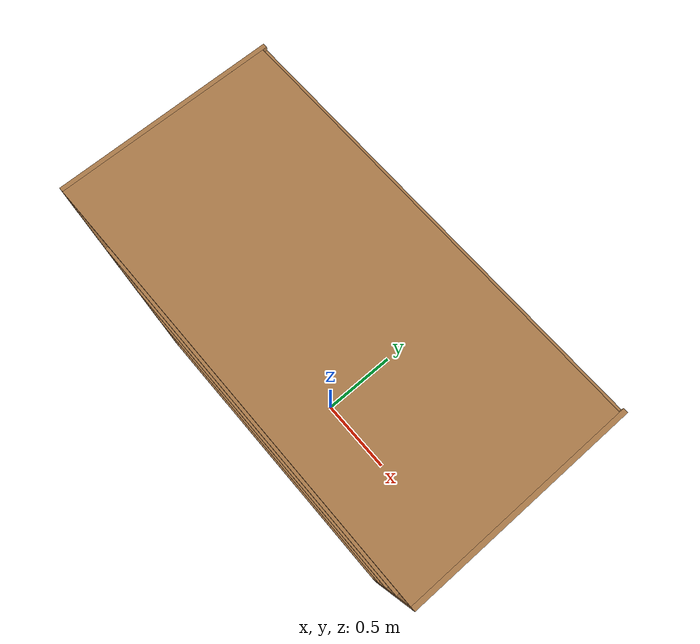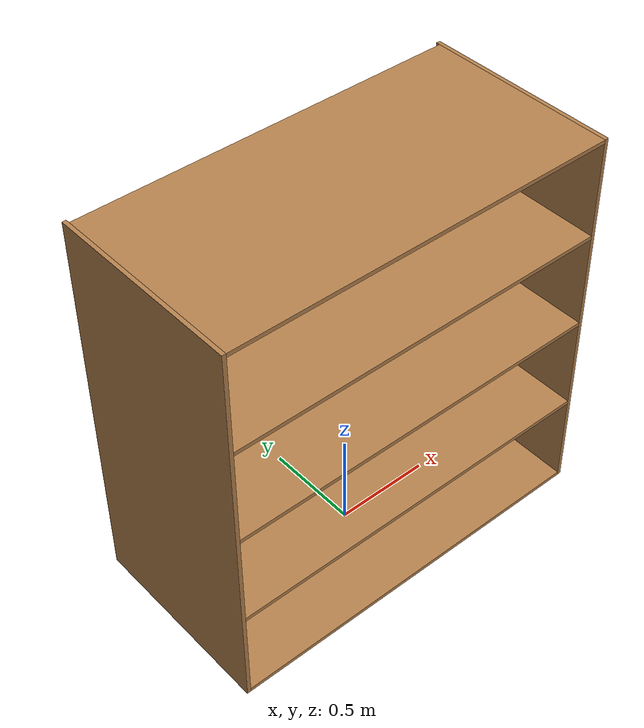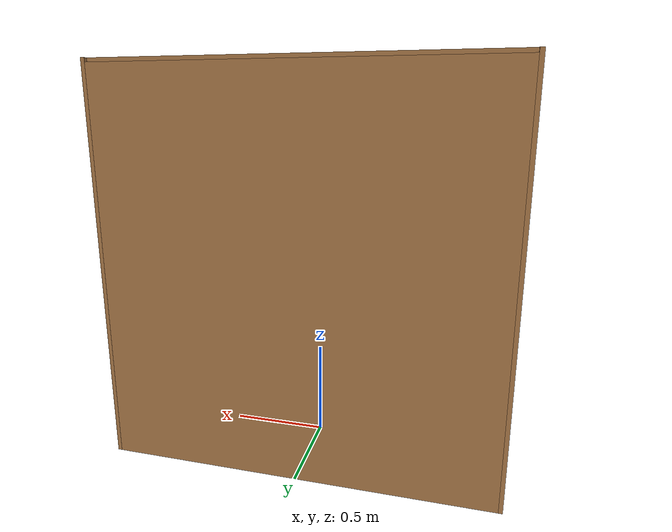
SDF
<?xml version="1.0" ?>
<sdf version="1.5">
  <model name="shelf_2x1x2_4l">
    <static>true</static>
    <link name="link">

      <collision name="box_1">
        <pose>-0.99 0.0 1.01  0 0 0</pose>
        <geometry>
          <box>
            <size>0.020000000000000018 1.0 2.02 </size>
          </box>
        </geometry>
      </collision>
      <visual name="box_1">
        <pose>-0.99 0.0 1.01  0 0 0</pose>
        <geometry>
          <box>
            <size>0.020000000000000018 1.0 2.02 </size>
          </box>
        </geometry>
        <material>
          <script>
            <name>Gazebo/Wood</name>
            <uri>file://media/materials/scripts/gazebo.material</uri>
          </script>
        </material>
      </visual>

      <collision name="box_2">
        <pose>0.99 0.0 1.01  0 0 0</pose>
        <geometry>
          <box>
            <size>0.020000000000000018 1.0 2.02 </size>
          </box>
        </geometry>
      </collision>
      <visual name="box_2">
        <pose>0.99 0.0 1.01  0 0 0</pose>
        <geometry>
          <box>
            <size>0.020000000000000018 1.0 2.02 </size>
          </box>
        </geometry>
        <material>
          <script>
            <name>Gazebo/Wood</name>
            <uri>file://media/materials/scripts/gazebo.material</uri>
          </script>
        </material>
      </visual>

      <collision name="box_3">
        <pose>0.0 0.49 1.0  0 0 0</pose>
        <geometry>
          <box>
            <size>1.96 0.020000000000000018 2.0 </size>
          </box>
        </geometry>
      </collision>
      <visual name="box_3">
        <pose>0.0 0.49 1.0  0 0 0</pose>
        <geometry>
          <box>
            <size>1.96 0.020000000000000018 2.0 </size>
          </box>
        </geometry>
        <material>
          <script>
            <name>Gazebo/Wood</name>
            <uri>file://media/materials/scripts/gazebo.material</uri>
          </script>
        </material>
      </visual>

      <collision name="box_4">
        <pose>0.0 -0.010000000000000009 0.01  0 0 0</pose>
        <geometry>
          <box>
            <size>1.96 0.98 0.02 </size>
          </box>
        </geometry>
      </collision>
      <visual name="box_4">
        <pose>0.0 -0.010000000000000009 0.01  0 0 0</pose>
        <geometry>
          <box>
            <size>1.96 0.98 0.02 </size>
          </box>
        </geometry>
        <material>
          <script>
            <name>Gazebo/Wood</name>
            <uri>file://media/materials/scripts/gazebo.material</uri>
          </script>
        </material>
      </visual>

      <collision name="box_5">
        <pose>0.0 -0.010000000000000009 0.51  0 0 0</pose>
        <geometry>
          <box>
            <size>1.96 0.98 0.020000000000000018 </size>
          </box>
        </geometry>
      </collision>
      <visual name="box_5">
        <pose>0.0 -0.010000000000000009 0.51  0 0 0</pose>
        <geometry>
          <box>
            <size>1.96 0.98 0.020000000000000018 </size>
          </box>
        </geometry>
        <material>
          <script>
            <name>Gazebo/Wood</name>
            <uri>file://media/materials/scripts/gazebo.material</uri>
          </script>
        </material>
      </visual>

      <collision name="box_6">
        <pose>0.0 -0.010000000000000009 1.01  0 0 0</pose>
        <geometry>
          <box>
            <size>1.96 0.98 0.020000000000000018 </size>
          </box>
        </geometry>
      </collision>
      <visual name="box_6">
        <pose>0.0 -0.010000000000000009 1.01  0 0 0</pose>
        <geometry>
          <box>
            <size>1.96 0.98 0.020000000000000018 </size>
          </box>
        </geometry>
        <material>
          <script>
            <name>Gazebo/Wood</name>
            <uri>file://media/materials/scripts/gazebo.material</uri>
          </script>
        </material>
      </visual>

      <collision name="box_7">
        <pose>0.0 -0.010000000000000009 1.51  0 0 0</pose>
        <geometry>
          <box>
            <size>1.96 0.98 0.020000000000000018 </size>
          </box>
        </geometry>
      </collision>
      <visual name="box_7">
        <pose>0.0 -0.010000000000000009 1.51  0 0 0</pose>
        <geometry>
          <box>
            <size>1.96 0.98 0.020000000000000018 </size>
          </box>
        </geometry>
        <material>
          <script>
            <name>Gazebo/Wood</name>
            <uri>file://media/materials/scripts/gazebo.material</uri>
          </script>
        </material>
      </visual>

      <collision name="box_8">
        <pose>0.0 -0.010000000000000009 2.01  0 0 0</pose>
        <geometry>
          <box>
            <size>1.96 0.98 0.020000000000000018 </size>
          </box>
        </geometry>
      </collision>
      <visual name="box_8">
        <pose>0.0 -0.010000000000000009 2.01  0 0 0</pose>
        <geometry>
          <box>
            <size>1.96 0.98 0.020000000000000018 </size>
          </box>
        </geometry>
        <material>
          <script>
            <name>Gazebo/Wood</name>
            <uri>file://media/materials/scripts/gazebo.material</uri>
          </script>
        </material>
      </visual>

    </link>
  </model>
</sdf>
